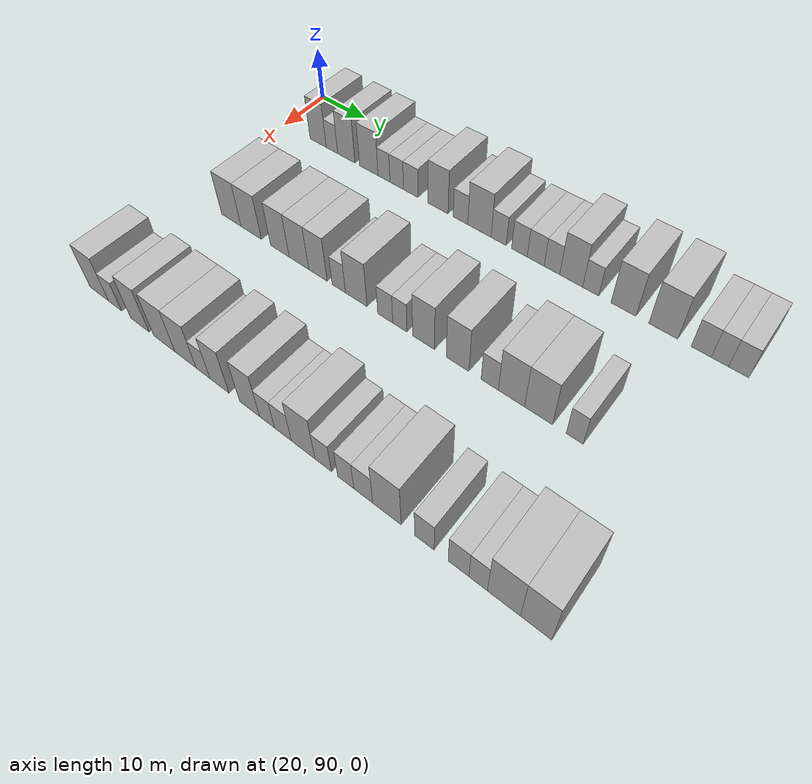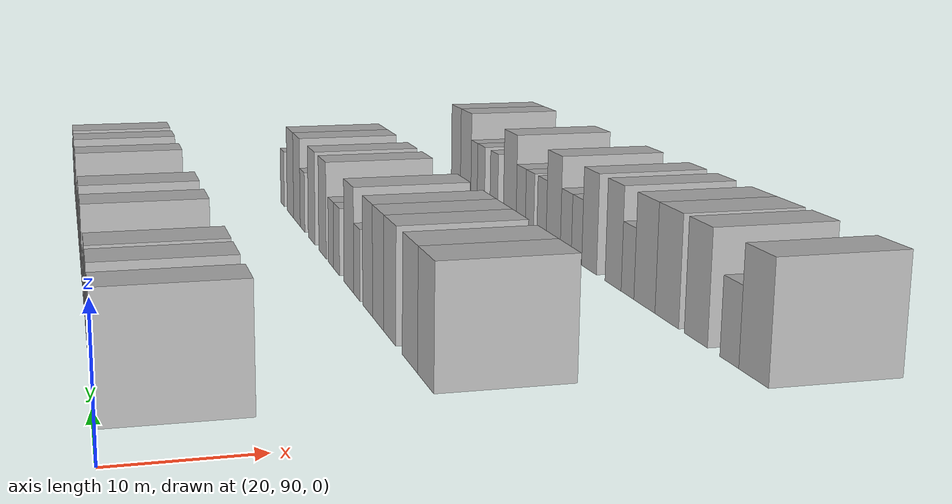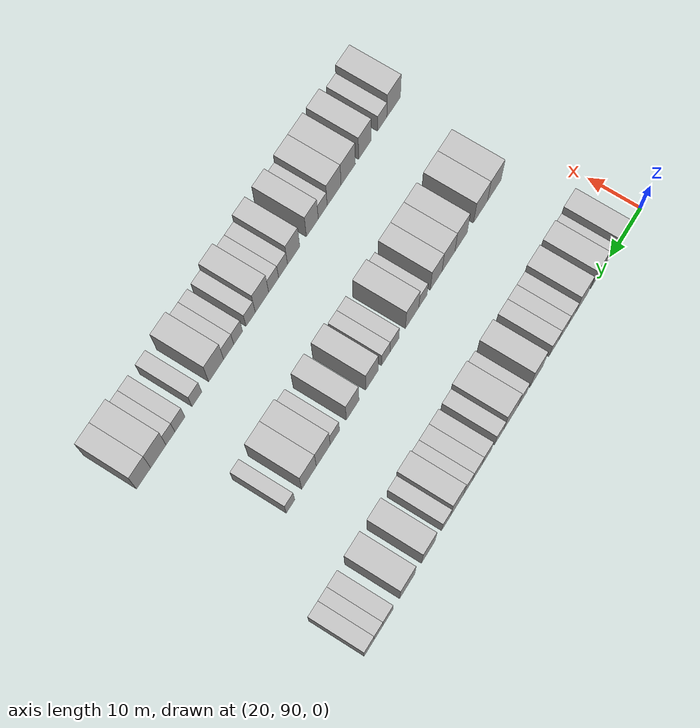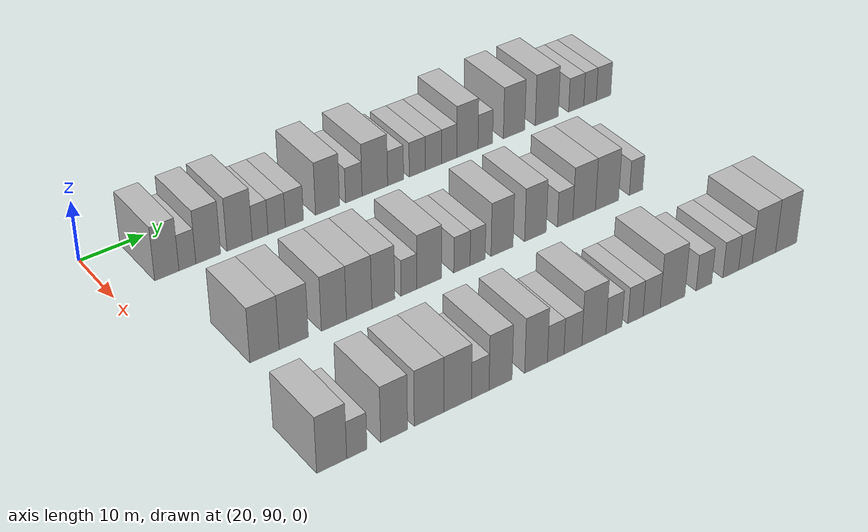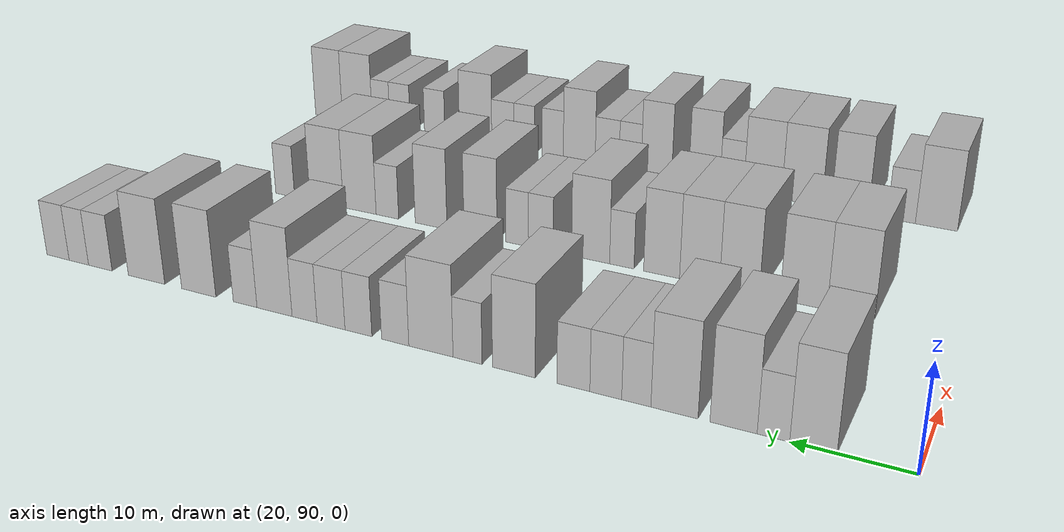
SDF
<sdf version="1.6">
 <world name="default">
  <model name="building_93">
   <static>1</static>
   <pose>25.0000 98.0971 0 0.000000 0.000000 0.000000</pose>
   <link name="link">
    <pose>0 0 4.50 0 0 0</pose>
    <collision name="collision"><geometry><box><size>10.0000 3.7493 9.0000</size></box></geometry></collision>
    <visual name="visual">
     <cast_shadows>0</cast_shadows>
     <geometry><box><size>10.0000 3.7493 9.0000</size></box></geometry>
     <material>
      <script>
       <uri>model://HANNAS_wall/materials/scripts</uri>
       <uri>model://HANNAS_wall/materials/textures</uri>
       <name>vrc/HANNAS_wall</name>
      </script>
     </material>
    </visual>
   </link>
  </model>
  <model name="building_94">
   <static>1</static>
   <pose>25.0000 101.2871 0 0.000000 0.000000 0.000000</pose>
   <link name="link">
    <pose>0 0 3.00 0 0 0</pose>
    <collision name="collision"><geometry><box><size>10.0000 2.6306 6.0000</size></box></geometry></collision>
    <visual name="visual">
     <cast_shadows>0</cast_shadows>
     <geometry><box><size>10.0000 2.6306 6.0000</size></box></geometry>
     <material>
      <script>
       <uri>model://HANNAS_wall/materials/scripts</uri>
       <uri>model://HANNAS_wall/materials/textures</uri>
       <name>vrc/HANNAS_wall</name>
      </script>
     </material>
    </visual>
   </link>
  </model>
  <model name="building_95">
   <static>1</static>
   <pose>25.0000 104.5535 0 0.000000 0.000000 0.000000</pose>
   <link name="link">
    <pose>0 0 4.50 0 0 0</pose>
    <collision name="collision"><geometry><box><size>10.0000 3.9021 9.0000</size></box></geometry></collision>
    <visual name="visual">
     <cast_shadows>0</cast_shadows>
     <geometry><box><size>10.0000 3.9021 9.0000</size></box></geometry>
     <material>
      <script>
       <uri>model://HANNAS_wall/materials/scripts</uri>
       <uri>model://HANNAS_wall/materials/textures</uri>
       <name>vrc/HANNAS_wall</name>
      </script>
     </material>
    </visual>
   </link>
  </model>
  <model name="building_96">
   <static>1</static>
   <pose>25.0000 109.5258 0 0.000000 0.000000 0.000000</pose>
   <link name="link">
    <pose>0 0 4.50 0 0 0</pose>
    <collision name="collision"><geometry><box><size>10.0000 4.0426 9.0000</size></box></geometry></collision>
    <visual name="visual">
     <cast_shadows>0</cast_shadows>
     <geometry><box><size>10.0000 4.0426 9.0000</size></box></geometry>
     <material>
      <script>
       <uri>model://HANNAS_wall/materials/scripts</uri>
       <uri>model://HANNAS_wall/materials/textures</uri>
       <name>vrc/HANNAS_wall</name>
      </script>
     </material>
    </visual>
   </link>
  </model>
  <model name="building_97">
   <static>1</static>
   <pose>25.0000 112.8296 0 0.000000 0.000000 0.000000</pose>
   <link name="link">
    <pose>0 0 3.00 0 0 0</pose>
    <collision name="collision"><geometry><box><size>10.0000 2.5651 6.0000</size></box></geometry></collision>
    <visual name="visual">
     <cast_shadows>0</cast_shadows>
     <geometry><box><size>10.0000 2.5651 6.0000</size></box></geometry>
     <material>
      <script>
       <uri>model://HANNAS_wall/materials/scripts</uri>
       <uri>model://HANNAS_wall/materials/textures</uri>
       <name>vrc/HANNAS_wall</name>
      </script>
     </material>
    </visual>
   </link>
  </model>
  <model name="building_98">
   <static>1</static>
   <pose>25.0000 115.5337 0 0.000000 0.000000 0.000000</pose>
   <link name="link">
    <pose>0 0 3.00 0 0 0</pose>
    <collision name="collision"><geometry><box><size>10.0000 2.8431 6.0000</size></box></geometry></collision>
    <visual name="visual">
     <cast_shadows>0</cast_shadows>
     <geometry><box><size>10.0000 2.8431 6.0000</size></box></geometry>
     <material>
      <script>
       <uri>model://HANNAS_wall/materials/scripts</uri>
       <uri>model://HANNAS_wall/materials/textures</uri>
       <name>vrc/HANNAS_wall</name>
      </script>
     </material>
    </visual>
   </link>
  </model>
  <model name="building_99">
   <static>1</static>
   <pose>25.0000 118.4545 0 0.000000 0.000000 0.000000</pose>
   <link name="link">
    <pose>0 0 3.00 0 0 0</pose>
    <collision name="collision"><geometry><box><size>10.0000 2.9986 6.0000</size></box></geometry></collision>
    <visual name="visual">
     <cast_shadows>0</cast_shadows>
     <geometry><box><size>10.0000 2.9986 6.0000</size></box></geometry>
     <material>
      <script>
       <uri>model://HANNAS_wall/materials/scripts</uri>
       <uri>model://HANNAS_wall/materials/textures</uri>
       <name>vrc/HANNAS_wall</name>
      </script>
     </material>
    </visual>
   </link>
  </model>
  <model name="building_100">
   <static>1</static>
   <pose>25.0000 123.9804 0 0.000000 0.000000 0.000000</pose>
   <link name="link">
    <pose>0 0 4.50 0 0 0</pose>
    <collision name="collision"><geometry><box><size>10.0000 4.0532 9.0000</size></box></geometry></collision>
    <visual name="visual">
     <cast_shadows>0</cast_shadows>
     <geometry><box><size>10.0000 4.0532 9.0000</size></box></geometry>
     <material>
      <script>
       <uri>model://HANNAS_wall/materials/scripts</uri>
       <uri>model://HANNAS_wall/materials/textures</uri>
       <name>vrc/HANNAS_wall</name>
      </script>
     </material>
    </visual>
   </link>
  </model>
  <model name="building_101">
   <static>1</static>
   <pose>25.0000 128.4227 0 0.000000 0.000000 0.000000</pose>
   <link name="link">
    <pose>0 0 3.00 0 0 0</pose>
    <collision name="collision"><geometry><box><size>10.0000 2.8312 6.0000</size></box></geometry></collision>
    <visual name="visual">
     <cast_shadows>0</cast_shadows>
     <geometry><box><size>10.0000 2.8312 6.0000</size></box></geometry>
     <material>
      <script>
       <uri>model://HANNAS_wall/materials/scripts</uri>
       <uri>model://HANNAS_wall/materials/textures</uri>
       <name>vrc/HANNAS_wall</name>
      </script>
     </material>
    </visual>
   </link>
  </model>
  <model name="building_102">
   <static>1</static>
   <pose>25.0000 132.0470 0 0.000000 0.000000 0.000000</pose>
   <link name="link">
    <pose>0 0 4.50 0 0 0</pose>
    <collision name="collision"><geometry><box><size>10.0000 4.4173 9.0000</size></box></geometry></collision>
    <visual name="visual">
     <cast_shadows>0</cast_shadows>
     <geometry><box><size>10.0000 4.4173 9.0000</size></box></geometry>
     <material>
      <script>
       <uri>model://HANNAS_wall/materials/scripts</uri>
       <uri>model://HANNAS_wall/materials/textures</uri>
       <name>vrc/HANNAS_wall</name>
      </script>
     </material>
    </visual>
   </link>
  </model>
  <model name="building_103">
   <static>1</static>
   <pose>25.0000 135.6474 0 0.000000 0.000000 0.000000</pose>
   <link name="link">
    <pose>0 0 3.00 0 0 0</pose>
    <collision name="collision"><geometry><box><size>10.0000 2.7835 6.0000</size></box></geometry></collision>
    <visual name="visual">
     <cast_shadows>0</cast_shadows>
     <geometry><box><size>10.0000 2.7835 6.0000</size></box></geometry>
     <material>
      <script>
       <uri>model://HANNAS_wall/materials/scripts</uri>
       <uri>model://HANNAS_wall/materials/textures</uri>
       <name>vrc/HANNAS_wall</name>
      </script>
     </material>
    </visual>
   </link>
  </model>
  <model name="building_104">
   <static>1</static>
   <pose>25.0000 139.4470 0 0.000000 0.000000 0.000000</pose>
   <link name="link">
    <pose>0 0 3.00 0 0 0</pose>
    <collision name="collision"><geometry><box><size>10.0000 2.8157 6.0000</size></box></geometry></collision>
    <visual name="visual">
     <cast_shadows>0</cast_shadows>
     <geometry><box><size>10.0000 2.8157 6.0000</size></box></geometry>
     <material>
      <script>
       <uri>model://HANNAS_wall/materials/scripts</uri>
       <uri>model://HANNAS_wall/materials/textures</uri>
       <name>vrc/HANNAS_wall</name>
      </script>
     </material>
    </visual>
   </link>
  </model>
  <model name="building_105">
   <static>1</static>
   <pose>25.0000 142.3486 0 0.000000 0.000000 0.000000</pose>
   <link name="link">
    <pose>0 0 3.00 0 0 0</pose>
    <collision name="collision"><geometry><box><size>10.0000 2.9877 6.0000</size></box></geometry></collision>
    <visual name="visual">
     <cast_shadows>0</cast_shadows>
     <geometry><box><size>10.0000 2.9877 6.0000</size></box></geometry>
     <material>
      <script>
       <uri>model://HANNAS_wall/materials/scripts</uri>
       <uri>model://HANNAS_wall/materials/textures</uri>
       <name>vrc/HANNAS_wall</name>
      </script>
     </material>
    </visual>
   </link>
  </model>
  <model name="building_106">
   <static>1</static>
   <pose>25.0000 145.1953 0 0.000000 0.000000 0.000000</pose>
   <link name="link">
    <pose>0 0 3.00 0 0 0</pose>
    <collision name="collision"><geometry><box><size>10.0000 2.7058 6.0000</size></box></geometry></collision>
    <visual name="visual">
     <cast_shadows>0</cast_shadows>
     <geometry><box><size>10.0000 2.7058 6.0000</size></box></geometry>
     <material>
      <script>
       <uri>model://HANNAS_wall/materials/scripts</uri>
       <uri>model://HANNAS_wall/materials/textures</uri>
       <name>vrc/HANNAS_wall</name>
      </script>
     </material>
    </visual>
   </link>
  </model>
  <model name="building_107">
   <static>1</static>
   <pose>25.0000 148.4910 0 0.000000 0.000000 0.000000</pose>
   <link name="link">
    <pose>0 0 4.50 0 0 0</pose>
    <collision name="collision"><geometry><box><size>10.0000 3.8855 9.0000</size></box></geometry></collision>
    <visual name="visual">
     <cast_shadows>0</cast_shadows>
     <geometry><box><size>10.0000 3.8855 9.0000</size></box></geometry>
     <material>
      <script>
       <uri>model://HANNAS_wall/materials/scripts</uri>
       <uri>model://HANNAS_wall/materials/textures</uri>
       <name>vrc/HANNAS_wall</name>
      </script>
     </material>
    </visual>
   </link>
  </model>
  <model name="building_108">
   <static>1</static>
   <pose>25.0000 151.7740 0 0.000000 0.000000 0.000000</pose>
   <link name="link">
    <pose>0 0 3.00 0 0 0</pose>
    <collision name="collision"><geometry><box><size>10.0000 2.6807 6.0000</size></box></geometry></collision>
    <visual name="visual">
     <cast_shadows>0</cast_shadows>
     <geometry><box><size>10.0000 2.6807 6.0000</size></box></geometry>
     <material>
      <script>
       <uri>model://HANNAS_wall/materials/scripts</uri>
       <uri>model://HANNAS_wall/materials/textures</uri>
       <name>vrc/HANNAS_wall</name>
      </script>
     </material>
    </visual>
   </link>
  </model>
  <model name="building_109">
   <static>1</static>
   <pose>25.0000 157.1139 0 0.000000 0.000000 0.000000</pose>
   <link name="link">
    <pose>0 0 4.50 0 0 0</pose>
    <collision name="collision"><geometry><box><size>10.0000 3.9990 9.0000</size></box></geometry></collision>
    <visual name="visual">
     <cast_shadows>0</cast_shadows>
     <geometry><box><size>10.0000 3.9990 9.0000</size></box></geometry>
     <material>
      <script>
       <uri>model://HANNAS_wall/materials/scripts</uri>
       <uri>model://HANNAS_wall/materials/textures</uri>
       <name>vrc/HANNAS_wall</name>
      </script>
     </material>
    </visual>
   </link>
  </model>
  <model name="building_110">
   <static>1</static>
   <pose>25.0000 163.3259 0 0.000000 0.000000 0.000000</pose>
   <link name="link">
    <pose>0 0 4.50 0 0 0</pose>
    <collision name="collision"><geometry><box><size>10.0000 4.4251 9.0000</size></box></geometry></collision>
    <visual name="visual">
     <cast_shadows>0</cast_shadows>
     <geometry><box><size>10.0000 4.4251 9.0000</size></box></geometry>
     <material>
      <script>
       <uri>model://HANNAS_wall/materials/scripts</uri>
       <uri>model://HANNAS_wall/materials/textures</uri>
       <name>vrc/HANNAS_wall</name>
      </script>
     </material>
    </visual>
   </link>
  </model>
  <model name="building_111">
   <static>1</static>
   <pose>25.0000 169.0151 0 0.000000 0.000000 0.000000</pose>
   <link name="link">
    <pose>0 0 3.00 0 0 0</pose>
    <collision name="collision"><geometry><box><size>10.0000 2.9533 6.0000</size></box></geometry></collision>
    <visual name="visual">
     <cast_shadows>0</cast_shadows>
     <geometry><box><size>10.0000 2.9533 6.0000</size></box></geometry>
     <material>
      <script>
       <uri>model://HANNAS_wall/materials/scripts</uri>
       <uri>model://HANNAS_wall/materials/textures</uri>
       <name>vrc/HANNAS_wall</name>
      </script>
     </material>
    </visual>
   </link>
  </model>
  <model name="building_112">
   <static>1</static>
   <pose>25.0000 171.7277 0 0.000000 0.000000 0.000000</pose>
   <link name="link">
    <pose>0 0 3.00 0 0 0</pose>
    <collision name="collision"><geometry><box><size>10.0000 2.4720 6.0000</size></box></geometry></collision>
    <visual name="visual">
     <cast_shadows>0</cast_shadows>
     <geometry><box><size>10.0000 2.4720 6.0000</size></box></geometry>
     <material>
      <script>
       <uri>model://HANNAS_wall/materials/scripts</uri>
       <uri>model://HANNAS_wall/materials/textures</uri>
       <name>vrc/HANNAS_wall</name>
      </script>
     </material>
    </visual>
   </link>
  </model>
  <model name="building_113">
   <static>1</static>
   <pose>25.0000 174.3914 0 0.000000 0.000000 0.000000</pose>
   <link name="link">
    <pose>0 0 3.00 0 0 0</pose>
    <collision name="collision"><geometry><box><size>10.0000 2.8553 6.0000</size></box></geometry></collision>
    <visual name="visual">
     <cast_shadows>0</cast_shadows>
     <geometry><box><size>10.0000 2.8553 6.0000</size></box></geometry>
     <material>
      <script>
       <uri>model://HANNAS_wall/materials/scripts</uri>
       <uri>model://HANNAS_wall/materials/textures</uri>
       <name>vrc/HANNAS_wall</name>
      </script>
     </material>
    </visual>
   </link>
  </model>
  <model name="building_217">
   <static>1</static>
   <pose>47.0000 100.2077 0 0.000000 0.000000 0.000000</pose>
   <link name="link">
    <pose>0 0 4.50 0 0 0</pose>
    <collision name="collision"><geometry><box><size>10.0000 4.3926 9.0000</size></box></geometry></collision>
    <visual name="visual">
     <cast_shadows>0</cast_shadows>
     <geometry><box><size>10.0000 4.3926 9.0000</size></box></geometry>
     <material>
      <script>
       <uri>model://HANNAS_wall/materials/scripts</uri>
       <uri>model://HANNAS_wall/materials/textures</uri>
       <name>vrc/HANNAS_wall</name>
      </script>
     </material>
    </visual>
   </link>
  </model>
  <model name="building_218">
   <static>1</static>
   <pose>47.0000 104.6356 0 0.000000 0.000000 0.000000</pose>
   <link name="link">
    <pose>0 0 4.50 0 0 0</pose>
    <collision name="collision"><geometry><box><size>10.0000 4.4632 9.0000</size></box></geometry></collision>
    <visual name="visual">
     <cast_shadows>0</cast_shadows>
     <geometry><box><size>10.0000 4.4632 9.0000</size></box></geometry>
     <material>
      <script>
       <uri>model://HANNAS_wall/materials/scripts</uri>
       <uri>model://HANNAS_wall/materials/textures</uri>
       <name>vrc/HANNAS_wall</name>
      </script>
     </material>
    </visual>
   </link>
  </model>
  <model name="building_219">
   <static>1</static>
   <pose>47.0000 110.8263 0 0.000000 0.000000 0.000000</pose>
   <link name="link">
    <pose>0 0 4.50 0 0 0</pose>
    <collision name="collision"><geometry><box><size>10.0000 3.9182 9.0000</size></box></geometry></collision>
    <visual name="visual">
     <cast_shadows>0</cast_shadows>
     <geometry><box><size>10.0000 3.9182 9.0000</size></box></geometry>
     <material>
      <script>
       <uri>model://HANNAS_wall/materials/scripts</uri>
       <uri>model://HANNAS_wall/materials/textures</uri>
       <name>vrc/HANNAS_wall</name>
      </script>
     </material>
    </visual>
   </link>
  </model>
  <model name="building_220">
   <static>1</static>
   <pose>47.0000 114.7945 0 0.000000 0.000000 0.000000</pose>
   <link name="link">
    <pose>0 0 4.50 0 0 0</pose>
    <collision name="collision"><geometry><box><size>10.0000 4.0181 9.0000</size></box></geometry></collision>
    <visual name="visual">
     <cast_shadows>0</cast_shadows>
     <geometry><box><size>10.0000 4.0181 9.0000</size></box></geometry>
     <material>
      <script>
       <uri>model://HANNAS_wall/materials/scripts</uri>
       <uri>model://HANNAS_wall/materials/textures</uri>
       <name>vrc/HANNAS_wall</name>
      </script>
     </material>
    </visual>
   </link>
  </model>
  <model name="building_221">
   <static>1</static>
   <pose>47.0000 118.6523 0 0.000000 0.000000 0.000000</pose>
   <link name="link">
    <pose>0 0 4.50 0 0 0</pose>
    <collision name="collision"><geometry><box><size>10.0000 3.6976 9.0000</size></box></geometry></collision>
    <visual name="visual">
     <cast_shadows>0</cast_shadows>
     <geometry><box><size>10.0000 3.6976 9.0000</size></box></geometry>
     <material>
      <script>
       <uri>model://HANNAS_wall/materials/scripts</uri>
       <uri>model://HANNAS_wall/materials/textures</uri>
       <name>vrc/HANNAS_wall</name>
      </script>
     </material>
    </visual>
   </link>
  </model>
  <model name="building_222">
   <static>1</static>
   <pose>47.0000 122.7919 0 0.000000 0.000000 0.000000</pose>
   <link name="link">
    <pose>0 0 3.00 0 0 0</pose>
    <collision name="collision"><geometry><box><size>10.0000 2.5815 6.0000</size></box></geometry></collision>
    <visual name="visual">
     <cast_shadows>0</cast_shadows>
     <geometry><box><size>10.0000 2.5815 6.0000</size></box></geometry>
     <material>
      <script>
       <uri>model://HANNAS_wall/materials/scripts</uri>
       <uri>model://HANNAS_wall/materials/textures</uri>
       <name>vrc/HANNAS_wall</name>
      </script>
     </material>
    </visual>
   </link>
  </model>
  <model name="building_223">
   <static>1</static>
   <pose>47.0000 126.1318 0 0.000000 0.000000 0.000000</pose>
   <link name="link">
    <pose>0 0 4.50 0 0 0</pose>
    <collision name="collision"><geometry><box><size>10.0000 4.0985 9.0000</size></box></geometry></collision>
    <visual name="visual">
     <cast_shadows>0</cast_shadows>
     <geometry><box><size>10.0000 4.0985 9.0000</size></box></geometry>
     <material>
      <script>
       <uri>model://HANNAS_wall/materials/scripts</uri>
       <uri>model://HANNAS_wall/materials/textures</uri>
       <name>vrc/HANNAS_wall</name>
      </script>
     </material>
    </visual>
   </link>
  </model>
  <model name="building_224">
   <static>1</static>
   <pose>47.0000 131.5508 0 0.000000 0.000000 0.000000</pose>
   <link name="link">
    <pose>0 0 3.00 0 0 0</pose>
    <collision name="collision"><geometry><box><size>10.0000 2.7394 6.0000</size></box></geometry></collision>
    <visual name="visual">
     <cast_shadows>0</cast_shadows>
     <geometry><box><size>10.0000 2.7394 6.0000</size></box></geometry>
     <material>
      <script>
       <uri>model://HANNAS_wall/materials/scripts</uri>
       <uri>model://HANNAS_wall/materials/textures</uri>
       <name>vrc/HANNAS_wall</name>
      </script>
     </material>
    </visual>
   </link>
  </model>
  <model name="building_225">
   <static>1</static>
   <pose>47.0000 134.2010 0 0.000000 0.000000 0.000000</pose>
   <link name="link">
    <pose>0 0 3.00 0 0 0</pose>
    <collision name="collision"><geometry><box><size>10.0000 2.5610 6.0000</size></box></geometry></collision>
    <visual name="visual">
     <cast_shadows>0</cast_shadows>
     <geometry><box><size>10.0000 2.5610 6.0000</size></box></geometry>
     <material>
      <script>
       <uri>model://HANNAS_wall/materials/scripts</uri>
       <uri>model://HANNAS_wall/materials/textures</uri>
       <name>vrc/HANNAS_wall</name>
      </script>
     </material>
    </visual>
   </link>
  </model>
  <model name="building_226">
   <static>1</static>
   <pose>47.0000 138.3800 0 0.000000 0.000000 0.000000</pose>
   <link name="link">
    <pose>0 0 4.50 0 0 0</pose>
    <collision name="collision"><geometry><box><size>10.0000 3.7970 9.0000</size></box></geometry></collision>
    <visual name="visual">
     <cast_shadows>0</cast_shadows>
     <geometry><box><size>10.0000 3.7970 9.0000</size></box></geometry>
     <material>
      <script>
       <uri>model://HANNAS_wall/materials/scripts</uri>
       <uri>model://HANNAS_wall/materials/textures</uri>
       <name>vrc/HANNAS_wall</name>
      </script>
     </material>
    </visual>
   </link>
  </model>
  <model name="building_227">
   <static>1</static>
   <pose>47.0000 144.1721 0 0.000000 0.000000 0.000000</pose>
   <link name="link">
    <pose>0 0 4.50 0 0 0</pose>
    <collision name="collision"><geometry><box><size>10.0000 3.7872 9.0000</size></box></geometry></collision>
    <visual name="visual">
     <cast_shadows>0</cast_shadows>
     <geometry><box><size>10.0000 3.7872 9.0000</size></box></geometry>
     <material>
      <script>
       <uri>model://HANNAS_wall/materials/scripts</uri>
       <uri>model://HANNAS_wall/materials/textures</uri>
       <name>vrc/HANNAS_wall</name>
      </script>
     </material>
    </visual>
   </link>
  </model>
  <model name="building_228">
   <static>1</static>
   <pose>47.0000 149.4449 0 0.000000 0.000000 0.000000</pose>
   <link name="link">
    <pose>0 0 3.00 0 0 0</pose>
    <collision name="collision"><geometry><box><size>10.0000 2.7584 6.0000</size></box></geometry></collision>
    <visual name="visual">
     <cast_shadows>0</cast_shadows>
     <geometry><box><size>10.0000 2.7584 6.0000</size></box></geometry>
     <material>
      <script>
       <uri>model://HANNAS_wall/materials/scripts</uri>
       <uri>model://HANNAS_wall/materials/textures</uri>
       <name>vrc/HANNAS_wall</name>
      </script>
     </material>
    </visual>
   </link>
  </model>
  <model name="building_229">
   <static>1</static>
   <pose>47.0000 152.8680 0 0.000000 0.000000 0.000000</pose>
   <link name="link">
    <pose>0 0 4.50 0 0 0</pose>
    <collision name="collision"><geometry><box><size>10.0000 4.0878 9.0000</size></box></geometry></collision>
    <visual name="visual">
     <cast_shadows>0</cast_shadows>
     <geometry><box><size>10.0000 4.0878 9.0000</size></box></geometry>
     <material>
      <script>
       <uri>model://HANNAS_wall/materials/scripts</uri>
       <uri>model://HANNAS_wall/materials/textures</uri>
       <name>vrc/HANNAS_wall</name>
      </script>
     </material>
    </visual>
   </link>
  </model>
  <model name="building_230">
   <static>1</static>
   <pose>47.0000 157.0372 0 0.000000 0.000000 0.000000</pose>
   <link name="link">
    <pose>0 0 4.50 0 0 0</pose>
    <collision name="collision"><geometry><box><size>10.0000 4.2505 9.0000</size></box></geometry></collision>
    <visual name="visual">
     <cast_shadows>0</cast_shadows>
     <geometry><box><size>10.0000 4.2505 9.0000</size></box></geometry>
     <material>
      <script>
       <uri>model://HANNAS_wall/materials/scripts</uri>
       <uri>model://HANNAS_wall/materials/textures</uri>
       <name>vrc/HANNAS_wall</name>
      </script>
     </material>
    </visual>
   </link>
  </model>
  <model name="building_231">
   <static>1</static>
   <pose>47.0000 162.3968 0 0.000000 0.000000 0.000000</pose>
   <link name="link">
    <pose>0 0 3.00 0 0 0</pose>
    <collision name="collision"><geometry><box><size>10.0000 2.4688 6.0000</size></box></geometry></collision>
    <visual name="visual">
     <cast_shadows>0</cast_shadows>
     <geometry><box><size>10.0000 2.4688 6.0000</size></box></geometry>
     <material>
      <script>
       <uri>model://HANNAS_wall/materials/scripts</uri>
       <uri>model://HANNAS_wall/materials/textures</uri>
       <name>vrc/HANNAS_wall</name>
      </script>
     </material>
    </visual>
   </link>
  </model>
  <model name="building_335">
   <static>1</static>
   <pose>69.0000 96.2926 0 0.000000 0.000000 0.000000</pose>
   <link name="link">
    <pose>0 0 4.50 0 0 0</pose>
    <collision name="collision"><geometry><box><size>10.0000 4.3087 9.0000</size></box></geometry></collision>
    <visual name="visual">
     <cast_shadows>0</cast_shadows>
     <geometry><box><size>10.0000 4.3087 9.0000</size></box></geometry>
     <material>
      <script>
       <uri>model://HANNAS_wall/materials/scripts</uri>
       <uri>model://HANNAS_wall/materials/textures</uri>
       <name>vrc/HANNAS_wall</name>
      </script>
     </material>
    </visual>
   </link>
  </model>
  <model name="building_336">
   <static>1</static>
   <pose>69.0000 99.9154 0 0.000000 0.000000 0.000000</pose>
   <link name="link">
    <pose>0 0 3.00 0 0 0</pose>
    <collision name="collision"><geometry><box><size>10.0000 2.9367 6.0000</size></box></geometry></collision>
    <visual name="visual">
     <cast_shadows>0</cast_shadows>
     <geometry><box><size>10.0000 2.9367 6.0000</size></box></geometry>
     <material>
      <script>
       <uri>model://HANNAS_wall/materials/scripts</uri>
       <uri>model://HANNAS_wall/materials/textures</uri>
       <name>vrc/HANNAS_wall</name>
      </script>
     </material>
    </visual>
   </link>
  </model>
  <model name="building_337">
   <static>1</static>
   <pose>69.0000 105.3749 0 0.000000 0.000000 0.000000</pose>
   <link name="link">
    <pose>0 0 4.50 0 0 0</pose>
    <collision name="collision"><geometry><box><size>10.0000 3.9824 9.0000</size></box></geometry></collision>
    <visual name="visual">
     <cast_shadows>0</cast_shadows>
     <geometry><box><size>10.0000 3.9824 9.0000</size></box></geometry>
     <material>
      <script>
       <uri>model://HANNAS_wall/materials/scripts</uri>
       <uri>model://HANNAS_wall/materials/textures</uri>
       <name>vrc/HANNAS_wall</name>
      </script>
     </material>
    </visual>
   </link>
  </model>
  <model name="building_338">
   <static>1</static>
   <pose>69.0000 110.5905 0 0.000000 0.000000 0.000000</pose>
   <link name="link">
    <pose>0 0 4.50 0 0 0</pose>
    <collision name="collision"><geometry><box><size>10.0000 4.4489 9.0000</size></box></geometry></collision>
    <visual name="visual">
     <cast_shadows>0</cast_shadows>
     <geometry><box><size>10.0000 4.4489 9.0000</size></box></geometry>
     <material>
      <script>
       <uri>model://HANNAS_wall/materials/scripts</uri>
       <uri>model://HANNAS_wall/materials/textures</uri>
       <name>vrc/HANNAS_wall</name>
      </script>
     </material>
    </visual>
   </link>
  </model>
  <model name="building_339">
   <static>1</static>
   <pose>69.0000 114.9514 0 0.000000 0.000000 0.000000</pose>
   <link name="link">
    <pose>0 0 4.50 0 0 0</pose>
    <collision name="collision"><geometry><box><size>10.0000 4.2727 9.0000</size></box></geometry></collision>
    <visual name="visual">
     <cast_shadows>0</cast_shadows>
     <geometry><box><size>10.0000 4.2727 9.0000</size></box></geometry>
     <material>
      <script>
       <uri>model://HANNAS_wall/materials/scripts</uri>
       <uri>model://HANNAS_wall/materials/textures</uri>
       <name>vrc/HANNAS_wall</name>
      </script>
     </material>
    </visual>
   </link>
  </model>
  <model name="building_340">
   <static>1</static>
   <pose>69.0000 118.4550 0 0.000000 0.000000 0.000000</pose>
   <link name="link">
    <pose>0 0 3.00 0 0 0</pose>
    <collision name="collision"><geometry><box><size>10.0000 2.7345 6.0000</size></box></geometry></collision>
    <visual name="visual">
     <cast_shadows>0</cast_shadows>
     <geometry><box><size>10.0000 2.7345 6.0000</size></box></geometry>
     <material>
      <script>
       <uri>model://HANNAS_wall/materials/scripts</uri>
       <uri>model://HANNAS_wall/materials/textures</uri>
       <name>vrc/HANNAS_wall</name>
      </script>
     </material>
    </visual>
   </link>
  </model>
  <model name="building_341">
   <static>1</static>
   <pose>69.0000 121.6409 0 0.000000 0.000000 0.000000</pose>
   <link name="link">
    <pose>0 0 4.50 0 0 0</pose>
    <collision name="collision"><geometry><box><size>10.0000 3.6372 9.0000</size></box></geometry></collision>
    <visual name="visual">
     <cast_shadows>0</cast_shadows>
     <geometry><box><size>10.0000 3.6372 9.0000</size></box></geometry>
     <material>
      <script>
       <uri>model://HANNAS_wall/materials/scripts</uri>
       <uri>model://HANNAS_wall/materials/textures</uri>
       <name>vrc/HANNAS_wall</name>
      </script>
     </material>
    </visual>
   </link>
  </model>
  <model name="building_342">
   <static>1</static>
   <pose>69.0000 127.2957 0 0.000000 0.000000 0.000000</pose>
   <link name="link">
    <pose>0 0 4.50 0 0 0</pose>
    <collision name="collision"><geometry><box><size>10.0000 3.6723 9.0000</size></box></geometry></collision>
    <visual name="visual">
     <cast_shadows>0</cast_shadows>
     <geometry><box><size>10.0000 3.6723 9.0000</size></box></geometry>
     <material>
      <script>
       <uri>model://HANNAS_wall/materials/scripts</uri>
       <uri>model://HANNAS_wall/materials/textures</uri>
       <name>vrc/HANNAS_wall</name>
      </script>
     </material>
    </visual>
   </link>
  </model>
  <model name="building_343">
   <static>1</static>
   <pose>69.0000 130.4784 0 0.000000 0.000000 0.000000</pose>
   <link name="link">
    <pose>0 0 3.00 0 0 0</pose>
    <collision name="collision"><geometry><box><size>10.0000 2.6930 6.0000</size></box></geometry></collision>
    <visual name="visual">
     <cast_shadows>0</cast_shadows>
     <geometry><box><size>10.0000 2.6930 6.0000</size></box></geometry>
     <material>
      <script>
       <uri>model://HANNAS_wall/materials/scripts</uri>
       <uri>model://HANNAS_wall/materials/textures</uri>
       <name>vrc/HANNAS_wall</name>
      </script>
     </material>
    </visual>
   </link>
  </model>
  <model name="building_344">
   <static>1</static>
   <pose>69.0000 133.3000 0 0.000000 0.000000 0.000000</pose>
   <link name="link">
    <pose>0 0 3.00 0 0 0</pose>
    <collision name="collision"><geometry><box><size>10.0000 2.9503 6.0000</size></box></geometry></collision>
    <visual name="visual">
     <cast_shadows>0</cast_shadows>
     <geometry><box><size>10.0000 2.9503 6.0000</size></box></geometry>
     <material>
      <script>
       <uri>model://HANNAS_wall/materials/scripts</uri>
       <uri>model://HANNAS_wall/materials/textures</uri>
       <name>vrc/HANNAS_wall</name>
      </script>
     </material>
    </visual>
   </link>
  </model>
  <model name="building_345">
   <static>1</static>
   <pose>69.0000 136.7794 0 0.000000 0.000000 0.000000</pose>
   <link name="link">
    <pose>0 0 4.50 0 0 0</pose>
    <collision name="collision"><geometry><box><size>10.0000 4.0084 9.0000</size></box></geometry></collision>
    <visual name="visual">
     <cast_shadows>0</cast_shadows>
     <geometry><box><size>10.0000 4.0084 9.0000</size></box></geometry>
     <material>
      <script>
       <uri>model://HANNAS_wall/materials/scripts</uri>
       <uri>model://HANNAS_wall/materials/textures</uri>
       <name>vrc/HANNAS_wall</name>
      </script>
     </material>
    </visual>
   </link>
  </model>
  <model name="building_346">
   <static>1</static>
   <pose>69.0000 140.1512 0 0.000000 0.000000 0.000000</pose>
   <link name="link">
    <pose>0 0 3.00 0 0 0</pose>
    <collision name="collision"><geometry><box><size>10.0000 2.7351 6.0000</size></box></geometry></collision>
    <visual name="visual">
     <cast_shadows>0</cast_shadows>
     <geometry><box><size>10.0000 2.7351 6.0000</size></box></geometry>
     <material>
      <script>
       <uri>model://HANNAS_wall/materials/scripts</uri>
       <uri>model://HANNAS_wall/materials/textures</uri>
       <name>vrc/HANNAS_wall</name>
      </script>
     </material>
    </visual>
   </link>
  </model>
  <model name="building_347">
   <static>1</static>
   <pose>69.0000 143.8174 0 0.000000 0.000000 0.000000</pose>
   <link name="link">
    <pose>0 0 3.00 0 0 0</pose>
    <collision name="collision"><geometry><box><size>10.0000 2.5973 6.0000</size></box></geometry></collision>
    <visual name="visual">
     <cast_shadows>0</cast_shadows>
     <geometry><box><size>10.0000 2.5973 6.0000</size></box></geometry>
     <material>
      <script>
       <uri>model://HANNAS_wall/materials/scripts</uri>
       <uri>model://HANNAS_wall/materials/textures</uri>
       <name>vrc/HANNAS_wall</name>
      </script>
     </material>
    </visual>
   </link>
  </model>
  <model name="building_348">
   <static>1</static>
   <pose>69.0000 146.5963 0 0.000000 0.000000 0.000000</pose>
   <link name="link">
    <pose>0 0 3.00 0 0 0</pose>
    <collision name="collision"><geometry><box><size>10.0000 2.9605 6.0000</size></box></geometry></collision>
    <visual name="visual">
     <cast_shadows>0</cast_shadows>
     <geometry><box><size>10.0000 2.9605 6.0000</size></box></geometry>
     <material>
      <script>
       <uri>model://HANNAS_wall/materials/scripts</uri>
       <uri>model://HANNAS_wall/materials/textures</uri>
       <name>vrc/HANNAS_wall</name>
      </script>
     </material>
    </visual>
   </link>
  </model>
  <model name="building_349">
   <static>1</static>
   <pose>69.0000 150.2394 0 0.000000 0.000000 0.000000</pose>
   <link name="link">
    <pose>0 0 4.50 0 0 0</pose>
    <collision name="collision"><geometry><box><size>10.0000 4.3257 9.0000</size></box></geometry></collision>
    <visual name="visual">
     <cast_shadows>0</cast_shadows>
     <geometry><box><size>10.0000 4.3257 9.0000</size></box></geometry>
     <material>
      <script>
       <uri>model://HANNAS_wall/materials/scripts</uri>
       <uri>model://HANNAS_wall/materials/textures</uri>
       <name>vrc/HANNAS_wall</name>
      </script>
     </material>
    </visual>
   </link>
  </model>
  <model name="building_350">
   <static>1</static>
   <pose>69.0000 155.8055 0 0.000000 0.000000 0.000000</pose>
   <link name="link">
    <pose>0 0 3.00 0 0 0</pose>
    <collision name="collision"><geometry><box><size>10.0000 2.8065 6.0000</size></box></geometry></collision>
    <visual name="visual">
     <cast_shadows>0</cast_shadows>
     <geometry><box><size>10.0000 2.8065 6.0000</size></box></geometry>
     <material>
      <script>
       <uri>model://HANNAS_wall/materials/scripts</uri>
       <uri>model://HANNAS_wall/materials/textures</uri>
       <name>vrc/HANNAS_wall</name>
      </script>
     </material>
    </visual>
   </link>
  </model>
  <model name="building_351">
   <static>1</static>
   <pose>69.0000 160.6409 0 0.000000 0.000000 0.000000</pose>
   <link name="link">
    <pose>0 0 3.00 0 0 0</pose>
    <collision name="collision"><geometry><box><size>10.0000 2.8643 6.0000</size></box></geometry></collision>
    <visual name="visual">
     <cast_shadows>0</cast_shadows>
     <geometry><box><size>10.0000 2.8643 6.0000</size></box></geometry>
     <material>
      <script>
       <uri>model://HANNAS_wall/materials/scripts</uri>
       <uri>model://HANNAS_wall/materials/textures</uri>
       <name>vrc/HANNAS_wall</name>
      </script>
     </material>
    </visual>
   </link>
  </model>
  <model name="building_352">
   <static>1</static>
   <pose>69.0000 163.3288 0 0.000000 0.000000 0.000000</pose>
   <link name="link">
    <pose>0 0 3.00 0 0 0</pose>
    <collision name="collision"><geometry><box><size>10.0000 2.5116 6.0000</size></box></geometry></collision>
    <visual name="visual">
     <cast_shadows>0</cast_shadows>
     <geometry><box><size>10.0000 2.5116 6.0000</size></box></geometry>
     <material>
      <script>
       <uri>model://HANNAS_wall/materials/scripts</uri>
       <uri>model://HANNAS_wall/materials/textures</uri>
       <name>vrc/HANNAS_wall</name>
      </script>
     </material>
    </visual>
   </link>
  </model>
  <model name="building_353">
   <static>1</static>
   <pose>69.0000 166.7544 0 0.000000 0.000000 0.000000</pose>
   <link name="link">
    <pose>0 0 4.50 0 0 0</pose>
    <collision name="collision"><geometry><box><size>10.0000 4.3398 9.0000</size></box></geometry></collision>
    <visual name="visual">
     <cast_shadows>0</cast_shadows>
     <geometry><box><size>10.0000 4.3398 9.0000</size></box></geometry>
     <material>
      <script>
       <uri>model://HANNAS_wall/materials/scripts</uri>
       <uri>model://HANNAS_wall/materials/textures</uri>
       <name>vrc/HANNAS_wall</name>
      </script>
     </material>
    </visual>
   </link>
  </model>
  <model name="building_354">
   <static>1</static>
   <pose>69.0000 170.9066 0 0.000000 0.000000 0.000000</pose>
   <link name="link">
    <pose>0 0 4.50 0 0 0</pose>
    <collision name="collision"><geometry><box><size>10.0000 3.9646 9.0000</size></box></geometry></collision>
    <visual name="visual">
     <cast_shadows>0</cast_shadows>
     <geometry><box><size>10.0000 3.9646 9.0000</size></box></geometry>
     <material>
      <script>
       <uri>model://HANNAS_wall/materials/scripts</uri>
       <uri>model://HANNAS_wall/materials/textures</uri>
       <name>vrc/HANNAS_wall</name>
      </script>
     </material>
    </visual>
   </link>
  </model>
 </world>
</sdf>
